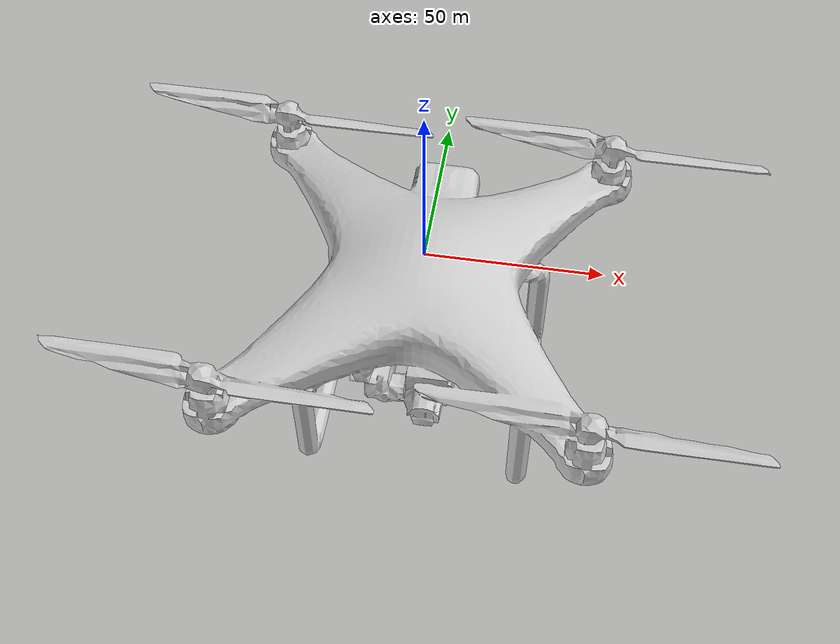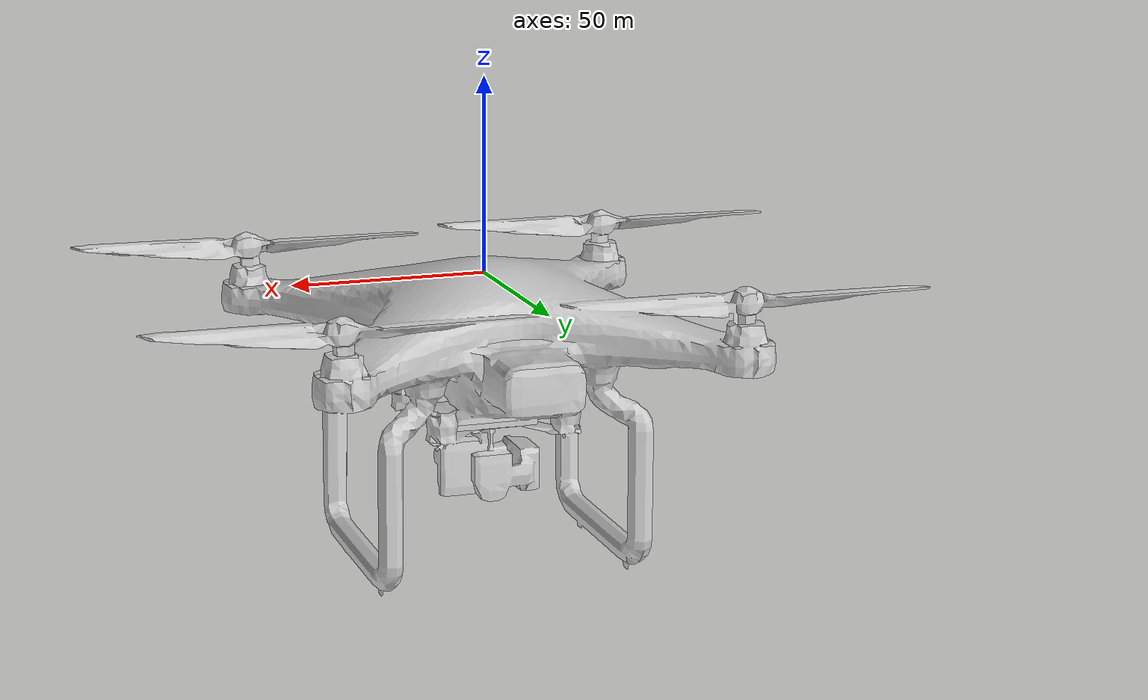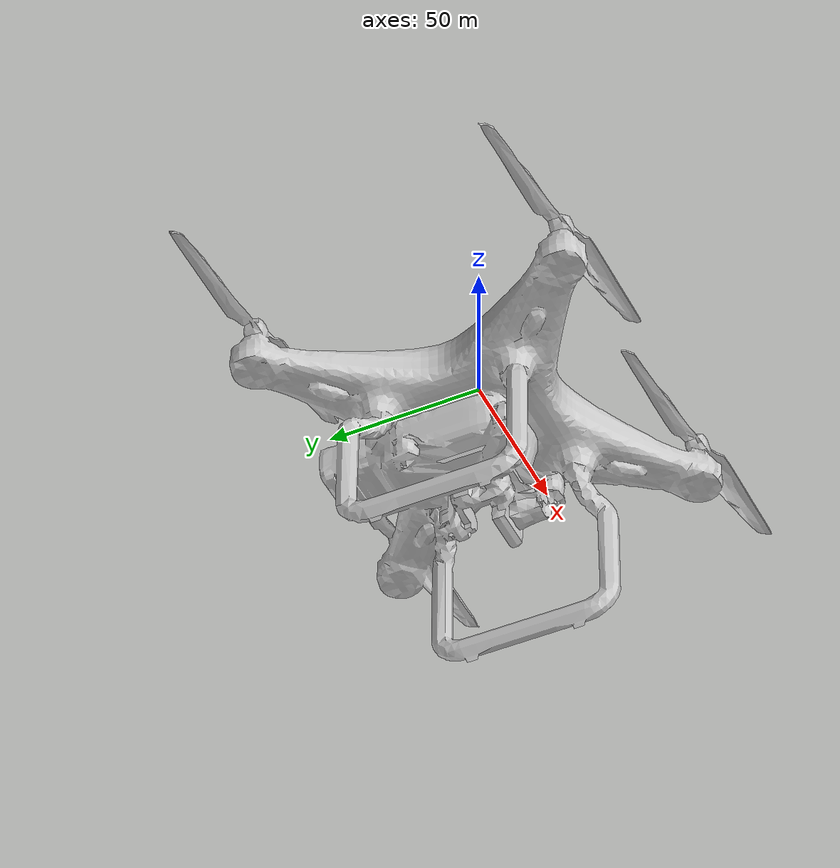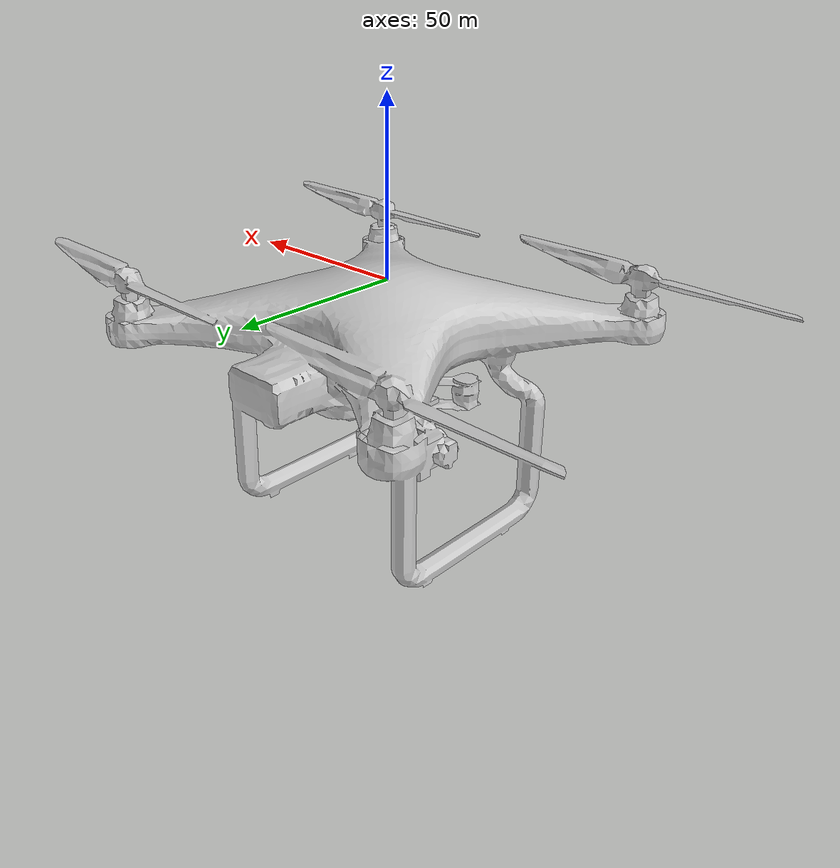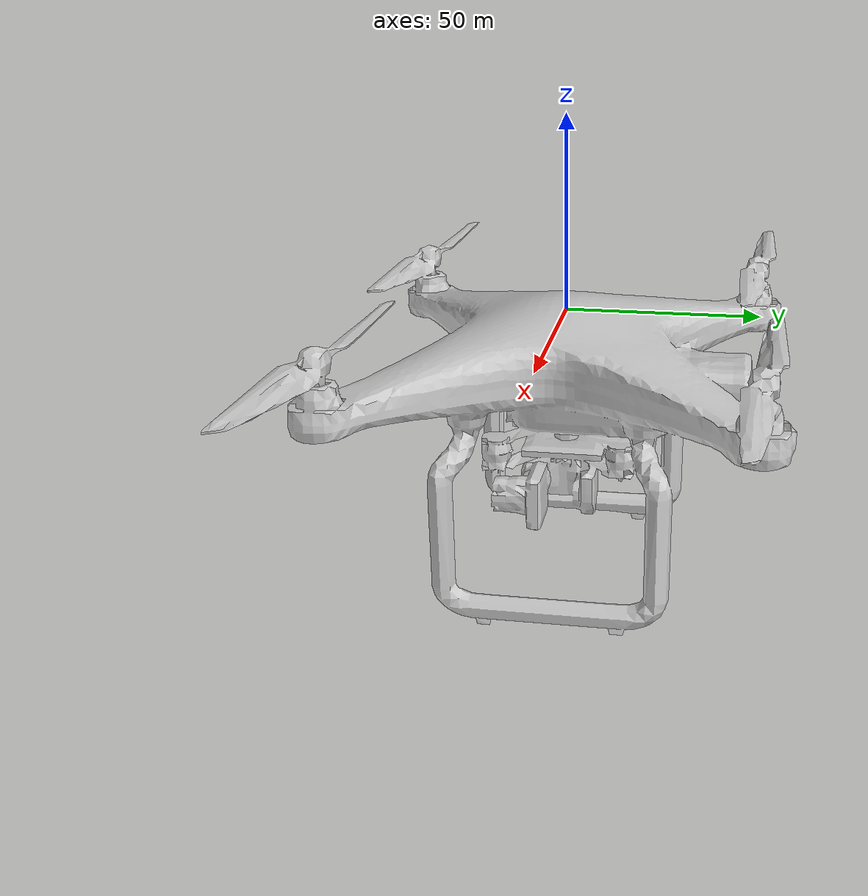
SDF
<?xml version="1.0" ?>
<sdf version="1.6">
  <model name="drone">
    <static>false</static>
    <link name="base_link">
      <inertial>
        <mass>2.0</mass>
        <inertia>
          <ixx>0.1</ixx>
          <ixy>0</ixy>
          <ixz>0</ixz>
          <iyy>0.1</iyy>
          <iyz>0</iyz>
          <izz>0.1</izz>
        </inertia>
      </inertial>
      <collision name="collision">
        <geometry>
          <mesh>
            <uri>model://drone/drone.stl</uri>
          </mesh>
        </geometry>
      </collision>
      <visual name="visual">
        <geometry>
          <mesh>
            <uri>model://drone/drone.stl</uri>
          </mesh>
        </geometry>
        <material>
          <ambient>0.8 0.8 0.8 1</ambient>
          <diffuse>0.8 0.8 0.8 1</diffuse>
          <specular>0.5 0.5 0.5 1</specular>
        </material>
      </visual>
    </link>

    <!-- Camera link -->
    <link name="camera_link">
      <pose>0 0 0.1 0 0 0</pose>
      <inertial>
        <mass>0.1</mass>
        <inertia>
          <ixx>0.001</ixx>
          <ixy>0</ixy>
          <ixz>0</ixz>
          <iyy>0.001</iyy>
          <iyz>0</iyz>
          <izz>0.001</izz>
        </inertia>
      </inertial>
      <visual name="camera_visual">
        <geometry>
          <box>
            <size>0.05 0.05 0.05</size>
          </box>
        </geometry>
        <material>
          <ambient>0.2 0.2 0.2 1</ambient>
          <diffuse>0.2 0.2 0.2 1</diffuse>
          <specular>0.1 0.1 0.1 1</specular>
        </material>
      </visual>
      <sensor name="camera" type="camera">
        <pose>0 0 0 0 0 0</pose>
        <visualize>true</visualize>
        <update_rate>30.0</update_rate>
        <camera name="head">
          <horizontal_fov>1.3962634</horizontal_fov>
          <image>
            <width>800</width>
            <height>600</height>
            <format>R8G8B8</format>
          </image>
          <clip>
            <near>0.02</near>
            <far>300</far>
          </clip>
          <noise>
            <type>gaussian</type>
            <mean>0.0</mean>
            <stddev>0.007</stddev>
          </noise>
        </camera>
        <plugin name="camera_controller" filename="libgazebo_ros_camera.so">
          <alwaysOn>true</alwaysOn>
          <updateRate>0.0</updateRate>
          <cameraName>drone/camera</cameraName>
          <imageTopicName>image_raw</imageTopicName>
          <cameraInfoTopicName>camera_info</cameraInfoTopicName>
          <frameName>camera_link</frameName>
          <hackBaseline>0.07</hackBaseline>
          <distortionK1>0.0</distortionK1>
          <distortionK2>0.0</distortionK2>
          <distortionK3>0.0</distortionK3>
          <distortionT1>0.0</distortionT1>
          <distortionT2>0.0</distortionT2>
        </plugin>
      </sensor>
    </link>

    <!-- Joint between base_link and camera_link -->
    <joint name="camera_joint" type="fixed">
      <parent>base_link</parent>
      <child>camera_link</child>
      <pose>0 0 0.1 0 0 0</pose>
    </joint>

    <plugin name="gazebo_ros_force" filename="libgazebo_ros_force.so">
      <robotNamespace>/drone</robotNamespace>
      <bodyName>base_link</bodyName>
    </plugin>
  </model>
</sdf>
